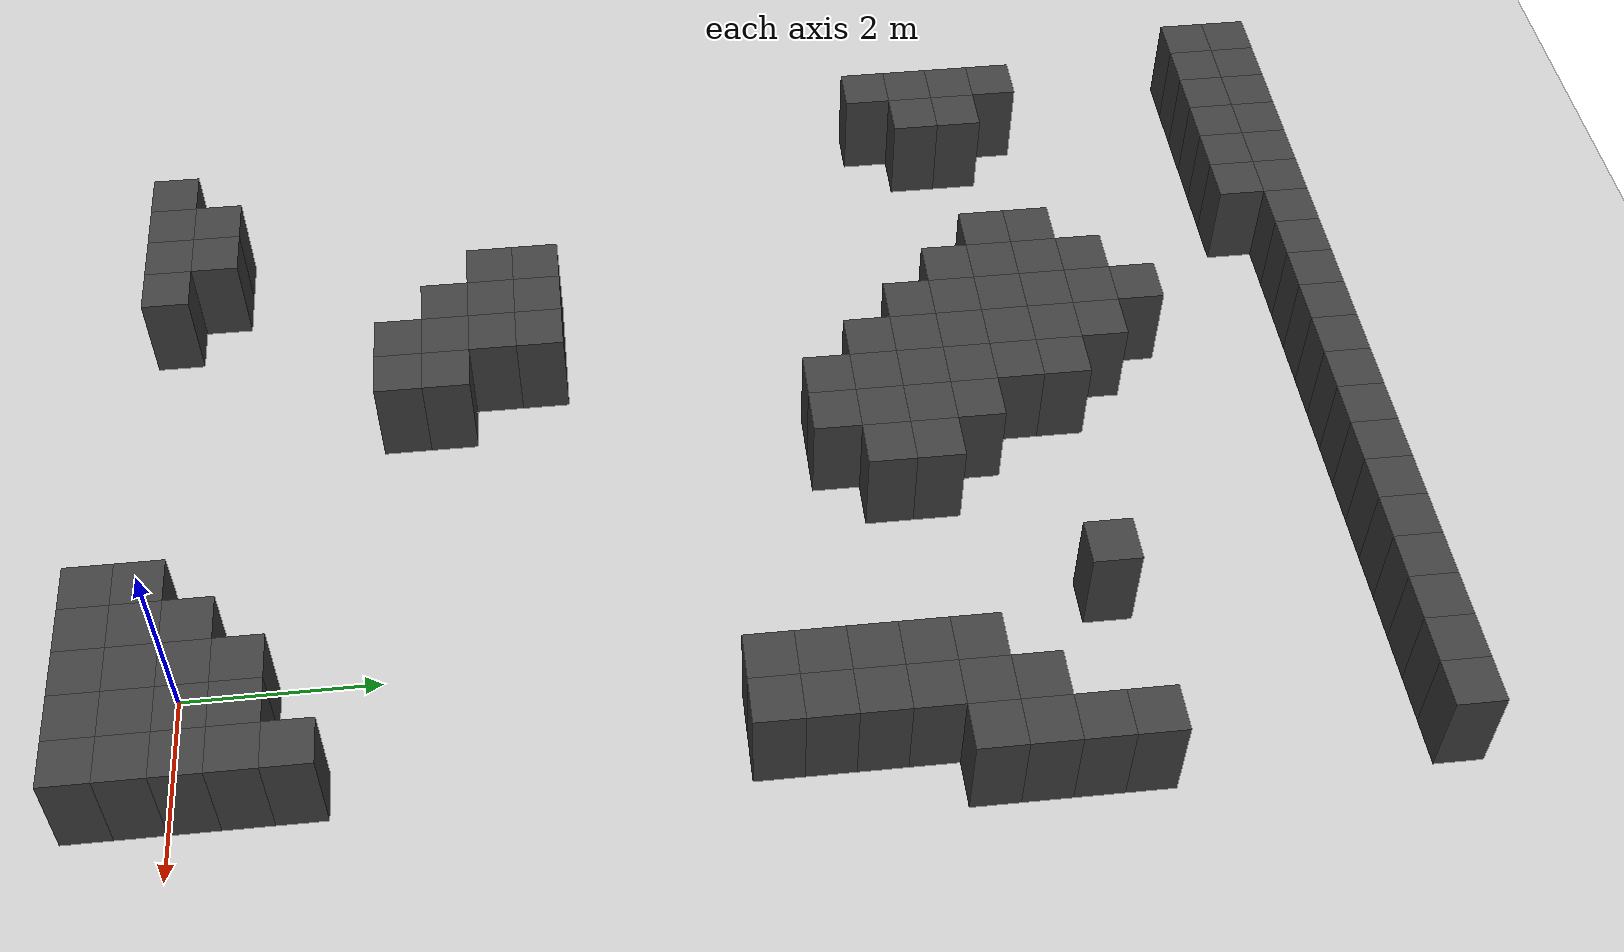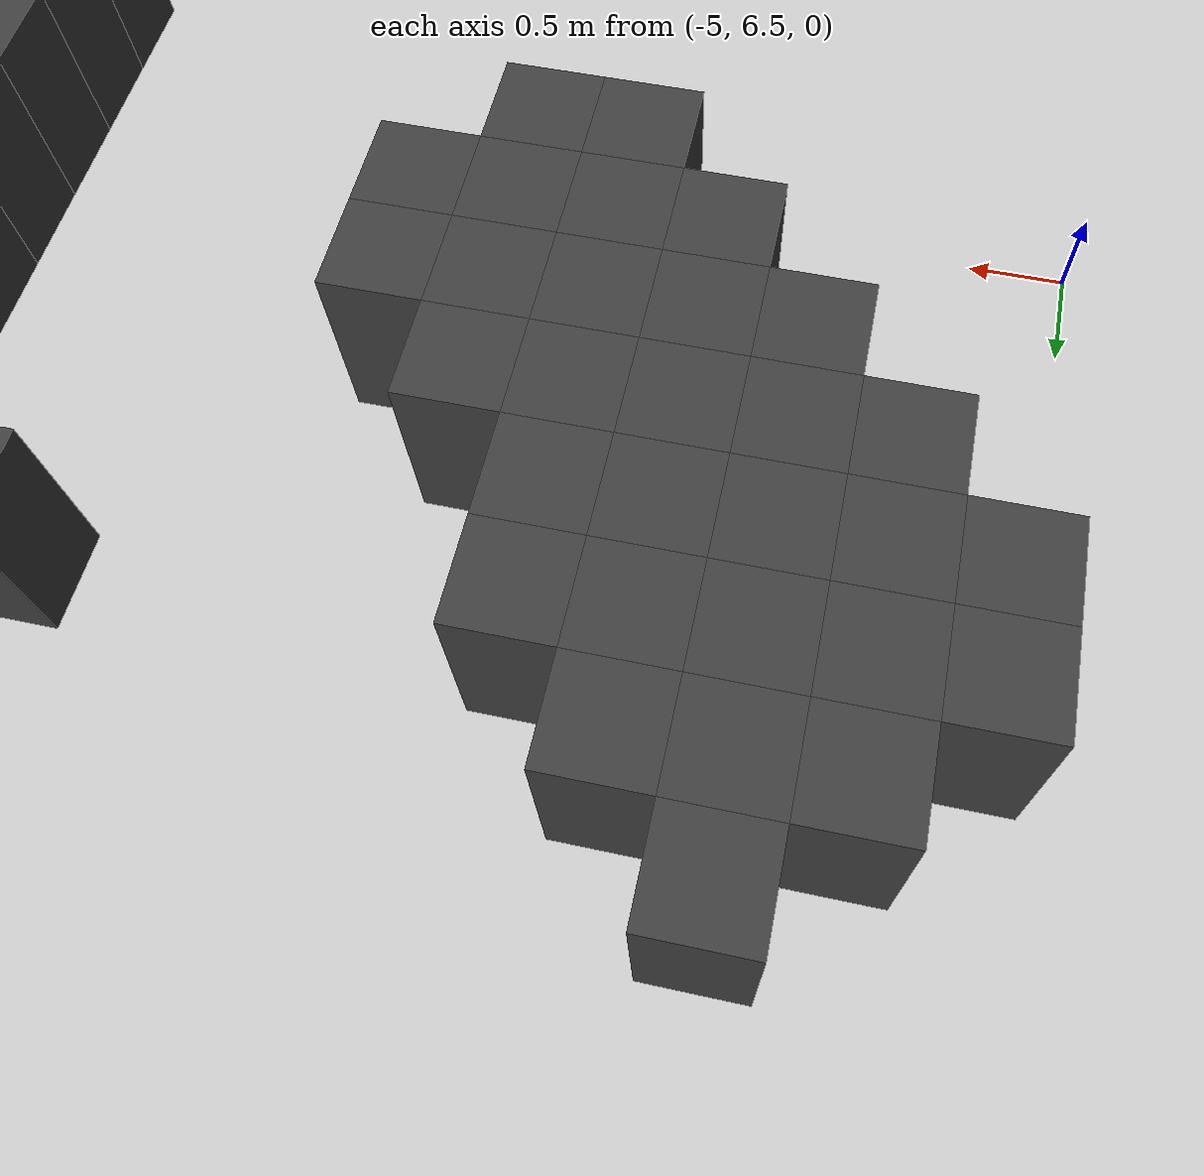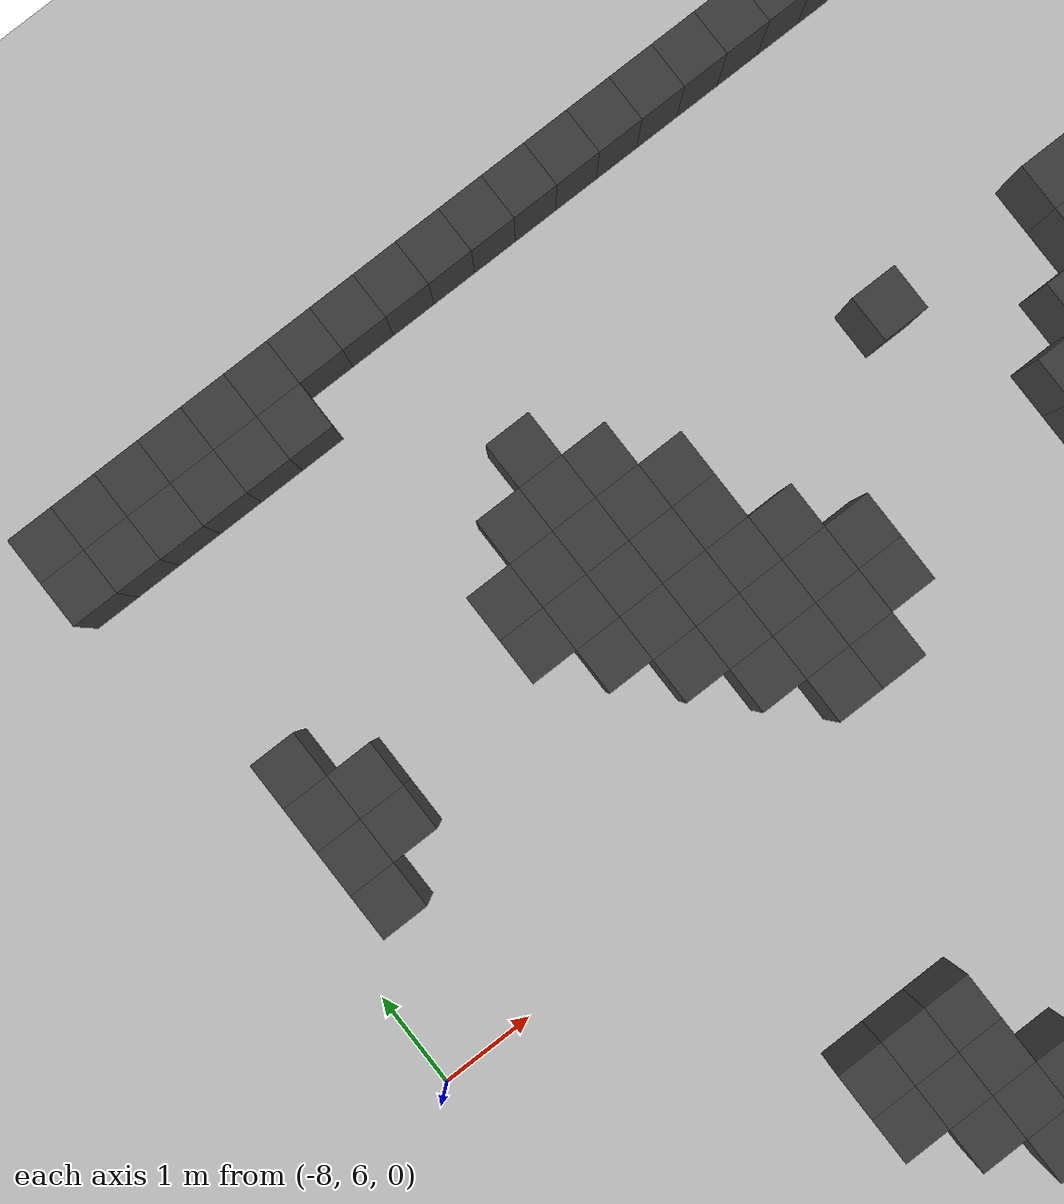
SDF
<sdf version="1.7">
 <world name="map_9405">
  <model name="ground_plane">
   <static>true</static>
   <link name="link">
    <collision name="collision">
     <geometry><plane><normal>0 0 1</normal><size>200 200</size></plane></geometry>
    </collision>
    <visual name="visual">
     <geometry><plane><normal>0 0 1</normal><size>200 200</size></plane></geometry>
     <material><ambient>0.8 0.8 0.8 1</ambient><diffuse>0.8 0.8 0.8 1</diffuse></material>
    </visual>
   </link>
  </model>
  <model name="maze_environment">
   <static>true</static>
   <link name="wall_9">
    <pose>-7.750 12.250 0.500 0 0 0</pose>
    <collision name="col"><geometry><box><size>0.5 0.5 1.0</size></box></geometry></collision>
    <visual name="vis">
     <geometry><box><size>0.5 0.5 1.0</size></box></geometry>
     <material><ambient>0.15 0.15 0.15 1</ambient><diffuse>0.25 0.25 0.25 1</diffuse></material>
    </visual>
   </link>
   <link name="wall_10">
    <pose>-7.250 12.250 0.500 0 0 0</pose>
    <collision name="col"><geometry><box><size>0.5 0.5 1.0</size></box></geometry></collision>
    <visual name="vis">
     <geometry><box><size>0.5 0.5 1.0</size></box></geometry>
     <material><ambient>0.15 0.15 0.15 1</ambient><diffuse>0.25 0.25 0.25 1</diffuse></material>
    </visual>
   </link>
   <link name="wall_11">
    <pose>-6.750 12.250 0.500 0 0 0</pose>
    <collision name="col"><geometry><box><size>0.5 0.5 1.0</size></box></geometry></collision>
    <visual name="vis">
     <geometry><box><size>0.5 0.5 1.0</size></box></geometry>
     <material><ambient>0.15 0.15 0.15 1</ambient><diffuse>0.25 0.25 0.25 1</diffuse></material>
    </visual>
   </link>
   <link name="wall_12">
    <pose>-6.250 12.250 0.500 0 0 0</pose>
    <collision name="col"><geometry><box><size>0.5 0.5 1.0</size></box></geometry></collision>
    <visual name="vis">
     <geometry><box><size>0.5 0.5 1.0</size></box></geometry>
     <material><ambient>0.15 0.15 0.15 1</ambient><diffuse>0.25 0.25 0.25 1</diffuse></material>
    </visual>
   </link>
   <link name="wall_13">
    <pose>-5.750 12.250 0.500 0 0 0</pose>
    <collision name="col"><geometry><box><size>0.5 0.5 1.0</size></box></geometry></collision>
    <visual name="vis">
     <geometry><box><size>0.5 0.5 1.0</size></box></geometry>
     <material><ambient>0.15 0.15 0.15 1</ambient><diffuse>0.25 0.25 0.25 1</diffuse></material>
    </visual>
   </link>
   <link name="wall_14">
    <pose>-5.250 12.250 0.500 0 0 0</pose>
    <collision name="col"><geometry><box><size>0.5 0.5 1.0</size></box></geometry></collision>
    <visual name="vis">
     <geometry><box><size>0.5 0.5 1.0</size></box></geometry>
     <material><ambient>0.15 0.15 0.15 1</ambient><diffuse>0.25 0.25 0.25 1</diffuse></material>
    </visual>
   </link>
   <link name="wall_15">
    <pose>-4.750 12.250 0.500 0 0 0</pose>
    <collision name="col"><geometry><box><size>0.5 0.5 1.0</size></box></geometry></collision>
    <visual name="vis">
     <geometry><box><size>0.5 0.5 1.0</size></box></geometry>
     <material><ambient>0.15 0.15 0.15 1</ambient><diffuse>0.25 0.25 0.25 1</diffuse></material>
    </visual>
   </link>
   <link name="wall_16">
    <pose>-4.250 12.250 0.500 0 0 0</pose>
    <collision name="col"><geometry><box><size>0.5 0.5 1.0</size></box></geometry></collision>
    <visual name="vis">
     <geometry><box><size>0.5 0.5 1.0</size></box></geometry>
     <material><ambient>0.15 0.15 0.15 1</ambient><diffuse>0.25 0.25 0.25 1</diffuse></material>
    </visual>
   </link>
   <link name="wall_17">
    <pose>-3.750 12.250 0.500 0 0 0</pose>
    <collision name="col"><geometry><box><size>0.5 0.5 1.0</size></box></geometry></collision>
    <visual name="vis">
     <geometry><box><size>0.5 0.5 1.0</size></box></geometry>
     <material><ambient>0.15 0.15 0.15 1</ambient><diffuse>0.25 0.25 0.25 1</diffuse></material>
    </visual>
   </link>
   <link name="wall_18">
    <pose>-3.250 12.250 0.500 0 0 0</pose>
    <collision name="col"><geometry><box><size>0.5 0.5 1.0</size></box></geometry></collision>
    <visual name="vis">
     <geometry><box><size>0.5 0.5 1.0</size></box></geometry>
     <material><ambient>0.15 0.15 0.15 1</ambient><diffuse>0.25 0.25 0.25 1</diffuse></material>
    </visual>
   </link>
   <link name="wall_19">
    <pose>-2.750 12.250 0.500 0 0 0</pose>
    <collision name="col"><geometry><box><size>0.5 0.5 1.0</size></box></geometry></collision>
    <visual name="vis">
     <geometry><box><size>0.5 0.5 1.0</size></box></geometry>
     <material><ambient>0.15 0.15 0.15 1</ambient><diffuse>0.25 0.25 0.25 1</diffuse></material>
    </visual>
   </link>
   <link name="wall_20">
    <pose>-2.250 12.250 0.500 0 0 0</pose>
    <collision name="col"><geometry><box><size>0.5 0.5 1.0</size></box></geometry></collision>
    <visual name="vis">
     <geometry><box><size>0.5 0.5 1.0</size></box></geometry>
     <material><ambient>0.15 0.15 0.15 1</ambient><diffuse>0.25 0.25 0.25 1</diffuse></material>
    </visual>
   </link>
   <link name="wall_21">
    <pose>-1.750 12.250 0.500 0 0 0</pose>
    <collision name="col"><geometry><box><size>0.5 0.5 1.0</size></box></geometry></collision>
    <visual name="vis">
     <geometry><box><size>0.5 0.5 1.0</size></box></geometry>
     <material><ambient>0.15 0.15 0.15 1</ambient><diffuse>0.25 0.25 0.25 1</diffuse></material>
    </visual>
   </link>
   <link name="wall_22">
    <pose>-1.250 12.250 0.500 0 0 0</pose>
    <collision name="col"><geometry><box><size>0.5 0.5 1.0</size></box></geometry></collision>
    <visual name="vis">
     <geometry><box><size>0.5 0.5 1.0</size></box></geometry>
     <material><ambient>0.15 0.15 0.15 1</ambient><diffuse>0.25 0.25 0.25 1</diffuse></material>
    </visual>
   </link>
   <link name="wall_23">
    <pose>-0.750 12.250 0.500 0 0 0</pose>
    <collision name="col"><geometry><box><size>0.5 0.5 1.0</size></box></geometry></collision>
    <visual name="vis">
     <geometry><box><size>0.5 0.5 1.0</size></box></geometry>
     <material><ambient>0.15 0.15 0.15 1</ambient><diffuse>0.25 0.25 0.25 1</diffuse></material>
    </visual>
   </link>
   <link name="wall_24">
    <pose>-0.250 12.250 0.500 0 0 0</pose>
    <collision name="col"><geometry><box><size>0.5 0.5 1.0</size></box></geometry></collision>
    <visual name="vis">
     <geometry><box><size>0.5 0.5 1.0</size></box></geometry>
     <material><ambient>0.15 0.15 0.15 1</ambient><diffuse>0.25 0.25 0.25 1</diffuse></material>
    </visual>
   </link>
   <link name="wall_25">
    <pose>0.250 12.250 0.500 0 0 0</pose>
    <collision name="col"><geometry><box><size>0.5 0.5 1.0</size></box></geometry></collision>
    <visual name="vis">
     <geometry><box><size>0.5 0.5 1.0</size></box></geometry>
     <material><ambient>0.15 0.15 0.15 1</ambient><diffuse>0.25 0.25 0.25 1</diffuse></material>
    </visual>
   </link>
   <link name="wall_26">
    <pose>0.750 12.250 0.500 0 0 0</pose>
    <collision name="col"><geometry><box><size>0.5 0.5 1.0</size></box></geometry></collision>
    <visual name="vis">
     <geometry><box><size>0.5 0.5 1.0</size></box></geometry>
     <material><ambient>0.15 0.15 0.15 1</ambient><diffuse>0.25 0.25 0.25 1</diffuse></material>
    </visual>
   </link>
   <link name="wall_27">
    <pose>1.250 12.250 0.500 0 0 0</pose>
    <collision name="col"><geometry><box><size>0.5 0.5 1.0</size></box></geometry></collision>
    <visual name="vis">
     <geometry><box><size>0.5 0.5 1.0</size></box></geometry>
     <material><ambient>0.15 0.15 0.15 1</ambient><diffuse>0.25 0.25 0.25 1</diffuse></material>
    </visual>
   </link>
   <link name="wall_28">
    <pose>1.750 12.250 0.500 0 0 0</pose>
    <collision name="col"><geometry><box><size>0.5 0.5 1.0</size></box></geometry></collision>
    <visual name="vis">
     <geometry><box><size>0.5 0.5 1.0</size></box></geometry>
     <material><ambient>0.15 0.15 0.15 1</ambient><diffuse>0.25 0.25 0.25 1</diffuse></material>
    </visual>
   </link>
   <link name="wall_54">
    <pose>-7.750 11.750 0.500 0 0 0</pose>
    <collision name="col"><geometry><box><size>0.5 0.5 1.0</size></box></geometry></collision>
    <visual name="vis">
     <geometry><box><size>0.5 0.5 1.0</size></box></geometry>
     <material><ambient>0.15 0.15 0.15 1</ambient><diffuse>0.25 0.25 0.25 1</diffuse></material>
    </visual>
   </link>
   <link name="wall_55">
    <pose>-7.250 11.750 0.500 0 0 0</pose>
    <collision name="col"><geometry><box><size>0.5 0.5 1.0</size></box></geometry></collision>
    <visual name="vis">
     <geometry><box><size>0.5 0.5 1.0</size></box></geometry>
     <material><ambient>0.15 0.15 0.15 1</ambient><diffuse>0.25 0.25 0.25 1</diffuse></material>
    </visual>
   </link>
   <link name="wall_56">
    <pose>-6.750 11.750 0.500 0 0 0</pose>
    <collision name="col"><geometry><box><size>0.5 0.5 1.0</size></box></geometry></collision>
    <visual name="vis">
     <geometry><box><size>0.5 0.5 1.0</size></box></geometry>
     <material><ambient>0.15 0.15 0.15 1</ambient><diffuse>0.25 0.25 0.25 1</diffuse></material>
    </visual>
   </link>
   <link name="wall_57">
    <pose>-6.250 11.750 0.500 0 0 0</pose>
    <collision name="col"><geometry><box><size>0.5 0.5 1.0</size></box></geometry></collision>
    <visual name="vis">
     <geometry><box><size>0.5 0.5 1.0</size></box></geometry>
     <material><ambient>0.15 0.15 0.15 1</ambient><diffuse>0.25 0.25 0.25 1</diffuse></material>
    </visual>
   </link>
   <link name="wall_58">
    <pose>-5.750 11.750 0.500 0 0 0</pose>
    <collision name="col"><geometry><box><size>0.5 0.5 1.0</size></box></geometry></collision>
    <visual name="vis">
     <geometry><box><size>0.5 0.5 1.0</size></box></geometry>
     <material><ambient>0.15 0.15 0.15 1</ambient><diffuse>0.25 0.25 0.25 1</diffuse></material>
    </visual>
   </link>
   <link name="wall_59">
    <pose>-5.250 11.750 0.500 0 0 0</pose>
    <collision name="col"><geometry><box><size>0.5 0.5 1.0</size></box></geometry></collision>
    <visual name="vis">
     <geometry><box><size>0.5 0.5 1.0</size></box></geometry>
     <material><ambient>0.15 0.15 0.15 1</ambient><diffuse>0.25 0.25 0.25 1</diffuse></material>
    </visual>
   </link>
   <link name="wall_103">
    <pose>-3.750 10.250 0.500 0 0 0</pose>
    <collision name="col"><geometry><box><size>0.5 0.5 1.0</size></box></geometry></collision>
    <visual name="vis">
     <geometry><box><size>0.5 0.5 1.0</size></box></geometry>
     <material><ambient>0.15 0.15 0.15 1</ambient><diffuse>0.25 0.25 0.25 1</diffuse></material>
    </visual>
   </link>
   <link name="wall_113">
    <pose>-4.250 9.750 0.500 0 0 0</pose>
    <collision name="col"><geometry><box><size>0.5 0.5 1.0</size></box></geometry></collision>
    <visual name="vis">
     <geometry><box><size>0.5 0.5 1.0</size></box></geometry>
     <material><ambient>0.15 0.15 0.15 1</ambient><diffuse>0.25 0.25 0.25 1</diffuse></material>
    </visual>
   </link>
   <link name="wall_114">
    <pose>-3.750 9.750 0.500 0 0 0</pose>
    <collision name="col"><geometry><box><size>0.5 0.5 1.0</size></box></geometry></collision>
    <visual name="vis">
     <geometry><box><size>0.5 0.5 1.0</size></box></geometry>
     <material><ambient>0.15 0.15 0.15 1</ambient><diffuse>0.25 0.25 0.25 1</diffuse></material>
    </visual>
   </link>
   <link name="wall_115">
    <pose>-3.250 9.750 0.500 0 0 0</pose>
    <collision name="col"><geometry><box><size>0.5 0.5 1.0</size></box></geometry></collision>
    <visual name="vis">
     <geometry><box><size>0.5 0.5 1.0</size></box></geometry>
     <material><ambient>0.15 0.15 0.15 1</ambient><diffuse>0.25 0.25 0.25 1</diffuse></material>
    </visual>
   </link>
   <link name="wall_124">
    <pose>-7.250 9.250 0.500 0 0 0</pose>
    <collision name="col"><geometry><box><size>0.5 0.5 1.0</size></box></geometry></collision>
    <visual name="vis">
     <geometry><box><size>0.5 0.5 1.0</size></box></geometry>
     <material><ambient>0.15 0.15 0.15 1</ambient><diffuse>0.25 0.25 0.25 1</diffuse></material>
    </visual>
   </link>
   <link name="wall_125">
    <pose>-4.750 9.250 0.500 0 0 0</pose>
    <collision name="col"><geometry><box><size>0.5 0.5 1.0</size></box></geometry></collision>
    <visual name="vis">
     <geometry><box><size>0.5 0.5 1.0</size></box></geometry>
     <material><ambient>0.15 0.15 0.15 1</ambient><diffuse>0.25 0.25 0.25 1</diffuse></material>
    </visual>
   </link>
   <link name="wall_126">
    <pose>-4.250 9.250 0.500 0 0 0</pose>
    <collision name="col"><geometry><box><size>0.5 0.5 1.0</size></box></geometry></collision>
    <visual name="vis">
     <geometry><box><size>0.5 0.5 1.0</size></box></geometry>
     <material><ambient>0.15 0.15 0.15 1</ambient><diffuse>0.25 0.25 0.25 1</diffuse></material>
    </visual>
   </link>
   <link name="wall_127">
    <pose>-3.750 9.250 0.500 0 0 0</pose>
    <collision name="col"><geometry><box><size>0.5 0.5 1.0</size></box></geometry></collision>
    <visual name="vis">
     <geometry><box><size>0.5 0.5 1.0</size></box></geometry>
     <material><ambient>0.15 0.15 0.15 1</ambient><diffuse>0.25 0.25 0.25 1</diffuse></material>
    </visual>
   </link>
   <link name="wall_128">
    <pose>-3.250 9.250 0.500 0 0 0</pose>
    <collision name="col"><geometry><box><size>0.5 0.5 1.0</size></box></geometry></collision>
    <visual name="vis">
     <geometry><box><size>0.5 0.5 1.0</size></box></geometry>
     <material><ambient>0.15 0.15 0.15 1</ambient><diffuse>0.25 0.25 0.25 1</diffuse></material>
    </visual>
   </link>
   <link name="wall_129">
    <pose>-2.750 9.250 0.500 0 0 0</pose>
    <collision name="col"><geometry><box><size>0.5 0.5 1.0</size></box></geometry></collision>
    <visual name="vis">
     <geometry><box><size>0.5 0.5 1.0</size></box></geometry>
     <material><ambient>0.15 0.15 0.15 1</ambient><diffuse>0.25 0.25 0.25 1</diffuse></material>
    </visual>
   </link>
   <link name="wall_130">
    <pose>-0.250 9.250 0.500 0 0 0</pose>
    <collision name="col"><geometry><box><size>0.5 0.5 1.0</size></box></geometry></collision>
    <visual name="vis">
     <geometry><box><size>0.5 0.5 1.0</size></box></geometry>
     <material><ambient>0.15 0.15 0.15 1</ambient><diffuse>0.25 0.25 0.25 1</diffuse></material>
    </visual>
   </link>
   <link name="wall_131">
    <pose>1.750 9.250 0.500 0 0 0</pose>
    <collision name="col"><geometry><box><size>0.5 0.5 1.0</size></box></geometry></collision>
    <visual name="vis">
     <geometry><box><size>0.5 0.5 1.0</size></box></geometry>
     <material><ambient>0.15 0.15 0.15 1</ambient><diffuse>0.25 0.25 0.25 1</diffuse></material>
    </visual>
   </link>
   <link name="wall_140">
    <pose>-7.250 8.750 0.500 0 0 0</pose>
    <collision name="col"><geometry><box><size>0.5 0.5 1.0</size></box></geometry></collision>
    <visual name="vis">
     <geometry><box><size>0.5 0.5 1.0</size></box></geometry>
     <material><ambient>0.15 0.15 0.15 1</ambient><diffuse>0.25 0.25 0.25 1</diffuse></material>
    </visual>
   </link>
   <link name="wall_141">
    <pose>-6.750 8.750 0.500 0 0 0</pose>
    <collision name="col"><geometry><box><size>0.5 0.5 1.0</size></box></geometry></collision>
    <visual name="vis">
     <geometry><box><size>0.5 0.5 1.0</size></box></geometry>
     <material><ambient>0.15 0.15 0.15 1</ambient><diffuse>0.25 0.25 0.25 1</diffuse></material>
    </visual>
   </link>
   <link name="wall_142">
    <pose>-4.750 8.750 0.500 0 0 0</pose>
    <collision name="col"><geometry><box><size>0.5 0.5 1.0</size></box></geometry></collision>
    <visual name="vis">
     <geometry><box><size>0.5 0.5 1.0</size></box></geometry>
     <material><ambient>0.15 0.15 0.15 1</ambient><diffuse>0.25 0.25 0.25 1</diffuse></material>
    </visual>
   </link>
   <link name="wall_143">
    <pose>-4.250 8.750 0.500 0 0 0</pose>
    <collision name="col"><geometry><box><size>0.5 0.5 1.0</size></box></geometry></collision>
    <visual name="vis">
     <geometry><box><size>0.5 0.5 1.0</size></box></geometry>
     <material><ambient>0.15 0.15 0.15 1</ambient><diffuse>0.25 0.25 0.25 1</diffuse></material>
    </visual>
   </link>
   <link name="wall_144">
    <pose>-3.750 8.750 0.500 0 0 0</pose>
    <collision name="col"><geometry><box><size>0.5 0.5 1.0</size></box></geometry></collision>
    <visual name="vis">
     <geometry><box><size>0.5 0.5 1.0</size></box></geometry>
     <material><ambient>0.15 0.15 0.15 1</ambient><diffuse>0.25 0.25 0.25 1</diffuse></material>
    </visual>
   </link>
   <link name="wall_145">
    <pose>-3.250 8.750 0.500 0 0 0</pose>
    <collision name="col"><geometry><box><size>0.5 0.5 1.0</size></box></geometry></collision>
    <visual name="vis">
     <geometry><box><size>0.5 0.5 1.0</size></box></geometry>
     <material><ambient>0.15 0.15 0.15 1</ambient><diffuse>0.25 0.25 0.25 1</diffuse></material>
    </visual>
   </link>
   <link name="wall_146">
    <pose>-2.750 8.750 0.500 0 0 0</pose>
    <collision name="col"><geometry><box><size>0.5 0.5 1.0</size></box></geometry></collision>
    <visual name="vis">
     <geometry><box><size>0.5 0.5 1.0</size></box></geometry>
     <material><ambient>0.15 0.15 0.15 1</ambient><diffuse>0.25 0.25 0.25 1</diffuse></material>
    </visual>
   </link>
   <link name="wall_147">
    <pose>1.750 8.750 0.500 0 0 0</pose>
    <collision name="col"><geometry><box><size>0.5 0.5 1.0</size></box></geometry></collision>
    <visual name="vis">
     <geometry><box><size>0.5 0.5 1.0</size></box></geometry>
     <material><ambient>0.15 0.15 0.15 1</ambient><diffuse>0.25 0.25 0.25 1</diffuse></material>
    </visual>
   </link>
   <link name="wall_155">
    <pose>-7.250 8.250 0.500 0 0 0</pose>
    <collision name="col"><geometry><box><size>0.5 0.5 1.0</size></box></geometry></collision>
    <visual name="vis">
     <geometry><box><size>0.5 0.5 1.0</size></box></geometry>
     <material><ambient>0.15 0.15 0.15 1</ambient><diffuse>0.25 0.25 0.25 1</diffuse></material>
    </visual>
   </link>
   <link name="wall_156">
    <pose>-6.750 8.250 0.500 0 0 0</pose>
    <collision name="col"><geometry><box><size>0.5 0.5 1.0</size></box></geometry></collision>
    <visual name="vis">
     <geometry><box><size>0.5 0.5 1.0</size></box></geometry>
     <material><ambient>0.15 0.15 0.15 1</ambient><diffuse>0.25 0.25 0.25 1</diffuse></material>
    </visual>
   </link>
   <link name="wall_157">
    <pose>-4.250 8.250 0.500 0 0 0</pose>
    <collision name="col"><geometry><box><size>0.5 0.5 1.0</size></box></geometry></collision>
    <visual name="vis">
     <geometry><box><size>0.5 0.5 1.0</size></box></geometry>
     <material><ambient>0.15 0.15 0.15 1</ambient><diffuse>0.25 0.25 0.25 1</diffuse></material>
    </visual>
   </link>
   <link name="wall_158">
    <pose>-3.750 8.250 0.500 0 0 0</pose>
    <collision name="col"><geometry><box><size>0.5 0.5 1.0</size></box></geometry></collision>
    <visual name="vis">
     <geometry><box><size>0.5 0.5 1.0</size></box></geometry>
     <material><ambient>0.15 0.15 0.15 1</ambient><diffuse>0.25 0.25 0.25 1</diffuse></material>
    </visual>
   </link>
   <link name="wall_159">
    <pose>-3.250 8.250 0.500 0 0 0</pose>
    <collision name="col"><geometry><box><size>0.5 0.5 1.0</size></box></geometry></collision>
    <visual name="vis">
     <geometry><box><size>0.5 0.5 1.0</size></box></geometry>
     <material><ambient>0.15 0.15 0.15 1</ambient><diffuse>0.25 0.25 0.25 1</diffuse></material>
    </visual>
   </link>
   <link name="wall_160">
    <pose>-2.750 8.250 0.500 0 0 0</pose>
    <collision name="col"><geometry><box><size>0.5 0.5 1.0</size></box></geometry></collision>
    <visual name="vis">
     <geometry><box><size>0.5 0.5 1.0</size></box></geometry>
     <material><ambient>0.15 0.15 0.15 1</ambient><diffuse>0.25 0.25 0.25 1</diffuse></material>
    </visual>
   </link>
   <link name="wall_161">
    <pose>-2.250 8.250 0.500 0 0 0</pose>
    <collision name="col"><geometry><box><size>0.5 0.5 1.0</size></box></geometry></collision>
    <visual name="vis">
     <geometry><box><size>0.5 0.5 1.0</size></box></geometry>
     <material><ambient>0.15 0.15 0.15 1</ambient><diffuse>0.25 0.25 0.25 1</diffuse></material>
    </visual>
   </link>
   <link name="wall_162">
    <pose>1.250 8.250 0.500 0 0 0</pose>
    <collision name="col"><geometry><box><size>0.5 0.5 1.0</size></box></geometry></collision>
    <visual name="vis">
     <geometry><box><size>0.5 0.5 1.0</size></box></geometry>
     <material><ambient>0.15 0.15 0.15 1</ambient><diffuse>0.25 0.25 0.25 1</diffuse></material>
    </visual>
   </link>
   <link name="wall_163">
    <pose>1.750 8.250 0.500 0 0 0</pose>
    <collision name="col"><geometry><box><size>0.5 0.5 1.0</size></box></geometry></collision>
    <visual name="vis">
     <geometry><box><size>0.5 0.5 1.0</size></box></geometry>
     <material><ambient>0.15 0.15 0.15 1</ambient><diffuse>0.25 0.25 0.25 1</diffuse></material>
    </visual>
   </link>
   <link name="wall_170">
    <pose>-7.250 7.750 0.500 0 0 0</pose>
    <collision name="col"><geometry><box><size>0.5 0.5 1.0</size></box></geometry></collision>
    <visual name="vis">
     <geometry><box><size>0.5 0.5 1.0</size></box></geometry>
     <material><ambient>0.15 0.15 0.15 1</ambient><diffuse>0.25 0.25 0.25 1</diffuse></material>
    </visual>
   </link>
   <link name="wall_171">
    <pose>-3.750 7.750 0.500 0 0 0</pose>
    <collision name="col"><geometry><box><size>0.5 0.5 1.0</size></box></geometry></collision>
    <visual name="vis">
     <geometry><box><size>0.5 0.5 1.0</size></box></geometry>
     <material><ambient>0.15 0.15 0.15 1</ambient><diffuse>0.25 0.25 0.25 1</diffuse></material>
    </visual>
   </link>
   <link name="wall_172">
    <pose>-3.250 7.750 0.500 0 0 0</pose>
    <collision name="col"><geometry><box><size>0.5 0.5 1.0</size></box></geometry></collision>
    <visual name="vis">
     <geometry><box><size>0.5 0.5 1.0</size></box></geometry>
     <material><ambient>0.15 0.15 0.15 1</ambient><diffuse>0.25 0.25 0.25 1</diffuse></material>
    </visual>
   </link>
   <link name="wall_173">
    <pose>-2.750 7.750 0.500 0 0 0</pose>
    <collision name="col"><geometry><box><size>0.5 0.5 1.0</size></box></geometry></collision>
    <visual name="vis">
     <geometry><box><size>0.5 0.5 1.0</size></box></geometry>
     <material><ambient>0.15 0.15 0.15 1</ambient><diffuse>0.25 0.25 0.25 1</diffuse></material>
    </visual>
   </link>
   <link name="wall_174">
    <pose>-2.250 7.750 0.500 0 0 0</pose>
    <collision name="col"><geometry><box><size>0.5 0.5 1.0</size></box></geometry></collision>
    <visual name="vis">
     <geometry><box><size>0.5 0.5 1.0</size></box></geometry>
     <material><ambient>0.15 0.15 0.15 1</ambient><diffuse>0.25 0.25 0.25 1</diffuse></material>
    </visual>
   </link>
   <link name="wall_175">
    <pose>-1.750 7.750 0.500 0 0 0</pose>
    <collision name="col"><geometry><box><size>0.5 0.5 1.0</size></box></geometry></collision>
    <visual name="vis">
     <geometry><box><size>0.5 0.5 1.0</size></box></geometry>
     <material><ambient>0.15 0.15 0.15 1</ambient><diffuse>0.25 0.25 0.25 1</diffuse></material>
    </visual>
   </link>
   <link name="wall_176">
    <pose>0.750 7.750 0.500 0 0 0</pose>
    <collision name="col"><geometry><box><size>0.5 0.5 1.0</size></box></geometry></collision>
    <visual name="vis">
     <geometry><box><size>0.5 0.5 1.0</size></box></geometry>
     <material><ambient>0.15 0.15 0.15 1</ambient><diffuse>0.25 0.25 0.25 1</diffuse></material>
    </visual>
   </link>
   <link name="wall_177">
    <pose>1.250 7.750 0.500 0 0 0</pose>
    <collision name="col"><geometry><box><size>0.5 0.5 1.0</size></box></geometry></collision>
    <visual name="vis">
     <geometry><box><size>0.5 0.5 1.0</size></box></geometry>
     <material><ambient>0.15 0.15 0.15 1</ambient><diffuse>0.25 0.25 0.25 1</diffuse></material>
    </visual>
   </link>
   <link name="wall_178">
    <pose>1.750 7.750 0.500 0 0 0</pose>
    <collision name="col"><geometry><box><size>0.5 0.5 1.0</size></box></geometry></collision>
    <visual name="vis">
     <geometry><box><size>0.5 0.5 1.0</size></box></geometry>
     <material><ambient>0.15 0.15 0.15 1</ambient><diffuse>0.25 0.25 0.25 1</diffuse></material>
    </visual>
   </link>
   <link name="wall_183">
    <pose>-3.250 7.250 0.500 0 0 0</pose>
    <collision name="col"><geometry><box><size>0.5 0.5 1.0</size></box></geometry></collision>
    <visual name="vis">
     <geometry><box><size>0.5 0.5 1.0</size></box></geometry>
     <material><ambient>0.15 0.15 0.15 1</ambient><diffuse>0.25 0.25 0.25 1</diffuse></material>
    </visual>
   </link>
   <link name="wall_184">
    <pose>-2.750 7.250 0.500 0 0 0</pose>
    <collision name="col"><geometry><box><size>0.5 0.5 1.0</size></box></geometry></collision>
    <visual name="vis">
     <geometry><box><size>0.5 0.5 1.0</size></box></geometry>
     <material><ambient>0.15 0.15 0.15 1</ambient><diffuse>0.25 0.25 0.25 1</diffuse></material>
    </visual>
   </link>
   <link name="wall_185">
    <pose>-2.250 7.250 0.500 0 0 0</pose>
    <collision name="col"><geometry><box><size>0.5 0.5 1.0</size></box></geometry></collision>
    <visual name="vis">
     <geometry><box><size>0.5 0.5 1.0</size></box></geometry>
     <material><ambient>0.15 0.15 0.15 1</ambient><diffuse>0.25 0.25 0.25 1</diffuse></material>
    </visual>
   </link>
   <link name="wall_186">
    <pose>-1.750 7.250 0.500 0 0 0</pose>
    <collision name="col"><geometry><box><size>0.5 0.5 1.0</size></box></geometry></collision>
    <visual name="vis">
     <geometry><box><size>0.5 0.5 1.0</size></box></geometry>
     <material><ambient>0.15 0.15 0.15 1</ambient><diffuse>0.25 0.25 0.25 1</diffuse></material>
    </visual>
   </link>
   <link name="wall_187">
    <pose>0.750 7.250 0.500 0 0 0</pose>
    <collision name="col"><geometry><box><size>0.5 0.5 1.0</size></box></geometry></collision>
    <visual name="vis">
     <geometry><box><size>0.5 0.5 1.0</size></box></geometry>
     <material><ambient>0.15 0.15 0.15 1</ambient><diffuse>0.25 0.25 0.25 1</diffuse></material>
    </visual>
   </link>
   <link name="wall_188">
    <pose>1.250 7.250 0.500 0 0 0</pose>
    <collision name="col"><geometry><box><size>0.5 0.5 1.0</size></box></geometry></collision>
    <visual name="vis">
     <geometry><box><size>0.5 0.5 1.0</size></box></geometry>
     <material><ambient>0.15 0.15 0.15 1</ambient><diffuse>0.25 0.25 0.25 1</diffuse></material>
    </visual>
   </link>
   <link name="wall_193">
    <pose>-2.750 6.750 0.500 0 0 0</pose>
    <collision name="col"><geometry><box><size>0.5 0.5 1.0</size></box></geometry></collision>
    <visual name="vis">
     <geometry><box><size>0.5 0.5 1.0</size></box></geometry>
     <material><ambient>0.15 0.15 0.15 1</ambient><diffuse>0.25 0.25 0.25 1</diffuse></material>
    </visual>
   </link>
   <link name="wall_194">
    <pose>-2.250 6.750 0.500 0 0 0</pose>
    <collision name="col"><geometry><box><size>0.5 0.5 1.0</size></box></geometry></collision>
    <visual name="vis">
     <geometry><box><size>0.5 0.5 1.0</size></box></geometry>
     <material><ambient>0.15 0.15 0.15 1</ambient><diffuse>0.25 0.25 0.25 1</diffuse></material>
    </visual>
   </link>
   <link name="wall_195">
    <pose>0.750 6.750 0.500 0 0 0</pose>
    <collision name="col"><geometry><box><size>0.5 0.5 1.0</size></box></geometry></collision>
    <visual name="vis">
     <geometry><box><size>0.5 0.5 1.0</size></box></geometry>
     <material><ambient>0.15 0.15 0.15 1</ambient><diffuse>0.25 0.25 0.25 1</diffuse></material>
    </visual>
   </link>
   <link name="wall_196">
    <pose>1.250 6.750 0.500 0 0 0</pose>
    <collision name="col"><geometry><box><size>0.5 0.5 1.0</size></box></geometry></collision>
    <visual name="vis">
     <geometry><box><size>0.5 0.5 1.0</size></box></geometry>
     <material><ambient>0.15 0.15 0.15 1</ambient><diffuse>0.25 0.25 0.25 1</diffuse></material>
    </visual>
   </link>
   <link name="wall_200">
    <pose>0.750 6.250 0.500 0 0 0</pose>
    <collision name="col"><geometry><box><size>0.5 0.5 1.0</size></box></geometry></collision>
    <visual name="vis">
     <geometry><box><size>0.5 0.5 1.0</size></box></geometry>
     <material><ambient>0.15 0.15 0.15 1</ambient><diffuse>0.25 0.25 0.25 1</diffuse></material>
    </visual>
   </link>
   <link name="wall_201">
    <pose>1.250 6.250 0.500 0 0 0</pose>
    <collision name="col"><geometry><box><size>0.5 0.5 1.0</size></box></geometry></collision>
    <visual name="vis">
     <geometry><box><size>0.5 0.5 1.0</size></box></geometry>
     <material><ambient>0.15 0.15 0.15 1</ambient><diffuse>0.25 0.25 0.25 1</diffuse></material>
    </visual>
   </link>
   <link name="wall_205">
    <pose>0.750 5.750 0.500 0 0 0</pose>
    <collision name="col"><geometry><box><size>0.5 0.5 1.0</size></box></geometry></collision>
    <visual name="vis">
     <geometry><box><size>0.5 0.5 1.0</size></box></geometry>
     <material><ambient>0.15 0.15 0.15 1</ambient><diffuse>0.25 0.25 0.25 1</diffuse></material>
    </visual>
   </link>
   <link name="wall_206">
    <pose>1.250 5.750 0.500 0 0 0</pose>
    <collision name="col"><geometry><box><size>0.5 0.5 1.0</size></box></geometry></collision>
    <visual name="vis">
     <geometry><box><size>0.5 0.5 1.0</size></box></geometry>
     <material><ambient>0.15 0.15 0.15 1</ambient><diffuse>0.25 0.25 0.25 1</diffuse></material>
    </visual>
   </link>
   <link name="wall_262">
    <pose>-4.750 3.750 0.500 0 0 0</pose>
    <collision name="col"><geometry><box><size>0.5 0.5 1.0</size></box></geometry></collision>
    <visual name="vis">
     <geometry><box><size>0.5 0.5 1.0</size></box></geometry>
     <material><ambient>0.15 0.15 0.15 1</ambient><diffuse>0.25 0.25 0.25 1</diffuse></material>
    </visual>
   </link>
   <link name="wall_263">
    <pose>-4.250 3.750 0.500 0 0 0</pose>
    <collision name="col"><geometry><box><size>0.5 0.5 1.0</size></box></geometry></collision>
    <visual name="vis">
     <geometry><box><size>0.5 0.5 1.0</size></box></geometry>
     <material><ambient>0.15 0.15 0.15 1</ambient><diffuse>0.25 0.25 0.25 1</diffuse></material>
    </visual>
   </link>
   <link name="wall_264">
    <pose>-3.750 3.750 0.500 0 0 0</pose>
    <collision name="col"><geometry><box><size>0.5 0.5 1.0</size></box></geometry></collision>
    <visual name="vis">
     <geometry><box><size>0.5 0.5 1.0</size></box></geometry>
     <material><ambient>0.15 0.15 0.15 1</ambient><diffuse>0.25 0.25 0.25 1</diffuse></material>
    </visual>
   </link>
   <link name="wall_288">
    <pose>-4.750 3.250 0.500 0 0 0</pose>
    <collision name="col"><geometry><box><size>0.5 0.5 1.0</size></box></geometry></collision>
    <visual name="vis">
     <geometry><box><size>0.5 0.5 1.0</size></box></geometry>
     <material><ambient>0.15 0.15 0.15 1</ambient><diffuse>0.25 0.25 0.25 1</diffuse></material>
    </visual>
   </link>
   <link name="wall_289">
    <pose>-4.250 3.250 0.500 0 0 0</pose>
    <collision name="col"><geometry><box><size>0.5 0.5 1.0</size></box></geometry></collision>
    <visual name="vis">
     <geometry><box><size>0.5 0.5 1.0</size></box></geometry>
     <material><ambient>0.15 0.15 0.15 1</ambient><diffuse>0.25 0.25 0.25 1</diffuse></material>
    </visual>
   </link>
   <link name="wall_290">
    <pose>-3.750 3.250 0.500 0 0 0</pose>
    <collision name="col"><geometry><box><size>0.5 0.5 1.0</size></box></geometry></collision>
    <visual name="vis">
     <geometry><box><size>0.5 0.5 1.0</size></box></geometry>
     <material><ambient>0.15 0.15 0.15 1</ambient><diffuse>0.25 0.25 0.25 1</diffuse></material>
    </visual>
   </link>
   <link name="wall_311">
    <pose>-4.250 2.750 0.500 0 0 0</pose>
    <collision name="col"><geometry><box><size>0.5 0.5 1.0</size></box></geometry></collision>
    <visual name="vis">
     <geometry><box><size>0.5 0.5 1.0</size></box></geometry>
     <material><ambient>0.15 0.15 0.15 1</ambient><diffuse>0.25 0.25 0.25 1</diffuse></material>
    </visual>
   </link>
   <link name="wall_312">
    <pose>-3.750 2.750 0.500 0 0 0</pose>
    <collision name="col"><geometry><box><size>0.5 0.5 1.0</size></box></geometry></collision>
    <visual name="vis">
     <geometry><box><size>0.5 0.5 1.0</size></box></geometry>
     <material><ambient>0.15 0.15 0.15 1</ambient><diffuse>0.25 0.25 0.25 1</diffuse></material>
    </visual>
   </link>
   <link name="wall_313">
    <pose>-3.250 2.750 0.500 0 0 0</pose>
    <collision name="col"><geometry><box><size>0.5 0.5 1.0</size></box></geometry></collision>
    <visual name="vis">
     <geometry><box><size>0.5 0.5 1.0</size></box></geometry>
     <material><ambient>0.15 0.15 0.15 1</ambient><diffuse>0.25 0.25 0.25 1</diffuse></material>
    </visual>
   </link>
   <link name="wall_333">
    <pose>-3.750 2.250 0.500 0 0 0</pose>
    <collision name="col"><geometry><box><size>0.5 0.5 1.0</size></box></geometry></collision>
    <visual name="vis">
     <geometry><box><size>0.5 0.5 1.0</size></box></geometry>
     <material><ambient>0.15 0.15 0.15 1</ambient><diffuse>0.25 0.25 0.25 1</diffuse></material>
    </visual>
   </link>
   <link name="wall_334">
    <pose>-3.250 2.250 0.500 0 0 0</pose>
    <collision name="col"><geometry><box><size>0.5 0.5 1.0</size></box></geometry></collision>
    <visual name="vis">
     <geometry><box><size>0.5 0.5 1.0</size></box></geometry>
     <material><ambient>0.15 0.15 0.15 1</ambient><diffuse>0.25 0.25 0.25 1</diffuse></material>
    </visual>
   </link>
   <link name="wall_374">
    <pose>1.250 1.250 0.500 0 0 0</pose>
    <collision name="col"><geometry><box><size>0.5 0.5 1.0</size></box></geometry></collision>
    <visual name="vis">
     <geometry><box><size>0.5 0.5 1.0</size></box></geometry>
     <material><ambient>0.15 0.15 0.15 1</ambient><diffuse>0.25 0.25 0.25 1</diffuse></material>
    </visual>
   </link>
   <link name="wall_393">
    <pose>0.250 0.750 0.500 0 0 0</pose>
    <collision name="col"><geometry><box><size>0.5 0.5 1.0</size></box></geometry></collision>
    <visual name="vis">
     <geometry><box><size>0.5 0.5 1.0</size></box></geometry>
     <material><ambient>0.15 0.15 0.15 1</ambient><diffuse>0.25 0.25 0.25 1</diffuse></material>
    </visual>
   </link>
   <link name="wall_394">
    <pose>0.750 0.750 0.500 0 0 0</pose>
    <collision name="col"><geometry><box><size>0.5 0.5 1.0</size></box></geometry></collision>
    <visual name="vis">
     <geometry><box><size>0.5 0.5 1.0</size></box></geometry>
     <material><ambient>0.15 0.15 0.15 1</ambient><diffuse>0.25 0.25 0.25 1</diffuse></material>
    </visual>
   </link>
   <link name="wall_395">
    <pose>1.250 0.750 0.500 0 0 0</pose>
    <collision name="col"><geometry><box><size>0.5 0.5 1.0</size></box></geometry></collision>
    <visual name="vis">
     <geometry><box><size>0.5 0.5 1.0</size></box></geometry>
     <material><ambient>0.15 0.15 0.15 1</ambient><diffuse>0.25 0.25 0.25 1</diffuse></material>
    </visual>
   </link>
   <link name="wall_410">
    <pose>-5.750 0.250 0.500 0 0 0</pose>
    <collision name="col"><geometry><box><size>0.5 0.5 1.0</size></box></geometry></collision>
    <visual name="vis">
     <geometry><box><size>0.5 0.5 1.0</size></box></geometry>
     <material><ambient>0.15 0.15 0.15 1</ambient><diffuse>0.25 0.25 0.25 1</diffuse></material>
    </visual>
   </link>
   <link name="wall_411">
    <pose>-5.250 0.250 0.500 0 0 0</pose>
    <collision name="col"><geometry><box><size>0.5 0.5 1.0</size></box></geometry></collision>
    <visual name="vis">
     <geometry><box><size>0.5 0.5 1.0</size></box></geometry>
     <material><ambient>0.15 0.15 0.15 1</ambient><diffuse>0.25 0.25 0.25 1</diffuse></material>
    </visual>
   </link>
   <link name="wall_412">
    <pose>-0.250 0.250 0.500 0 0 0</pose>
    <collision name="col"><geometry><box><size>0.5 0.5 1.0</size></box></geometry></collision>
    <visual name="vis">
     <geometry><box><size>0.5 0.5 1.0</size></box></geometry>
     <material><ambient>0.15 0.15 0.15 1</ambient><diffuse>0.25 0.25 0.25 1</diffuse></material>
    </visual>
   </link>
   <link name="wall_413">
    <pose>0.250 0.250 0.500 0 0 0</pose>
    <collision name="col"><geometry><box><size>0.5 0.5 1.0</size></box></geometry></collision>
    <visual name="vis">
     <geometry><box><size>0.5 0.5 1.0</size></box></geometry>
     <material><ambient>0.15 0.15 0.15 1</ambient><diffuse>0.25 0.25 0.25 1</diffuse></material>
    </visual>
   </link>
   <link name="wall_414">
    <pose>0.750 0.250 0.500 0 0 0</pose>
    <collision name="col"><geometry><box><size>0.5 0.5 1.0</size></box></geometry></collision>
    <visual name="vis">
     <geometry><box><size>0.5 0.5 1.0</size></box></geometry>
     <material><ambient>0.15 0.15 0.15 1</ambient><diffuse>0.25 0.25 0.25 1</diffuse></material>
    </visual>
   </link>
   <link name="wall_415">
    <pose>1.250 0.250 0.500 0 0 0</pose>
    <collision name="col"><geometry><box><size>0.5 0.5 1.0</size></box></geometry></collision>
    <visual name="vis">
     <geometry><box><size>0.5 0.5 1.0</size></box></geometry>
     <material><ambient>0.15 0.15 0.15 1</ambient><diffuse>0.25 0.25 0.25 1</diffuse></material>
    </visual>
   </link>
   <link name="wall_428">
    <pose>-6.250 -0.250 0.500 0 0 0</pose>
    <collision name="col"><geometry><box><size>0.5 0.5 1.0</size></box></geometry></collision>
    <visual name="vis">
     <geometry><box><size>0.5 0.5 1.0</size></box></geometry>
     <material><ambient>0.15 0.15 0.15 1</ambient><diffuse>0.25 0.25 0.25 1</diffuse></material>
    </visual>
   </link>
   <link name="wall_429">
    <pose>-5.750 -0.250 0.500 0 0 0</pose>
    <collision name="col"><geometry><box><size>0.5 0.5 1.0</size></box></geometry></collision>
    <visual name="vis">
     <geometry><box><size>0.5 0.5 1.0</size></box></geometry>
     <material><ambient>0.15 0.15 0.15 1</ambient><diffuse>0.25 0.25 0.25 1</diffuse></material>
    </visual>
   </link>
   <link name="wall_430">
    <pose>-5.250 -0.250 0.500 0 0 0</pose>
    <collision name="col"><geometry><box><size>0.5 0.5 1.0</size></box></geometry></collision>
    <visual name="vis">
     <geometry><box><size>0.5 0.5 1.0</size></box></geometry>
     <material><ambient>0.15 0.15 0.15 1</ambient><diffuse>0.25 0.25 0.25 1</diffuse></material>
    </visual>
   </link>
   <link name="wall_431">
    <pose>-4.750 -0.250 0.500 0 0 0</pose>
    <collision name="col"><geometry><box><size>0.5 0.5 1.0</size></box></geometry></collision>
    <visual name="vis">
     <geometry><box><size>0.5 0.5 1.0</size></box></geometry>
     <material><ambient>0.15 0.15 0.15 1</ambient><diffuse>0.25 0.25 0.25 1</diffuse></material>
    </visual>
   </link>
   <link name="wall_432">
    <pose>-0.750 -0.250 0.500 0 0 0</pose>
    <collision name="col"><geometry><box><size>0.5 0.5 1.0</size></box></geometry></collision>
    <visual name="vis">
     <geometry><box><size>0.5 0.5 1.0</size></box></geometry>
     <material><ambient>0.15 0.15 0.15 1</ambient><diffuse>0.25 0.25 0.25 1</diffuse></material>
    </visual>
   </link>
   <link name="wall_433">
    <pose>-0.250 -0.250 0.500 0 0 0</pose>
    <collision name="col"><geometry><box><size>0.5 0.5 1.0</size></box></geometry></collision>
    <visual name="vis">
     <geometry><box><size>0.5 0.5 1.0</size></box></geometry>
     <material><ambient>0.15 0.15 0.15 1</ambient><diffuse>0.25 0.25 0.25 1</diffuse></material>
    </visual>
   </link>
   <link name="wall_434">
    <pose>0.250 -0.250 0.500 0 0 0</pose>
    <collision name="col"><geometry><box><size>0.5 0.5 1.0</size></box></geometry></collision>
    <visual name="vis">
     <geometry><box><size>0.5 0.5 1.0</size></box></geometry>
     <material><ambient>0.15 0.15 0.15 1</ambient><diffuse>0.25 0.25 0.25 1</diffuse></material>
    </visual>
   </link>
   <link name="wall_435">
    <pose>0.750 -0.250 0.500 0 0 0</pose>
    <collision name="col"><geometry><box><size>0.5 0.5 1.0</size></box></geometry></collision>
    <visual name="vis">
     <geometry><box><size>0.5 0.5 1.0</size></box></geometry>
     <material><ambient>0.15 0.15 0.15 1</ambient><diffuse>0.25 0.25 0.25 1</diffuse></material>
    </visual>
   </link>
   <link name="wall_436">
    <pose>1.250 -0.250 0.500 0 0 0</pose>
    <collision name="col"><geometry><box><size>0.5 0.5 1.0</size></box></geometry></collision>
    <visual name="vis">
     <geometry><box><size>0.5 0.5 1.0</size></box></geometry>
     <material><ambient>0.15 0.15 0.15 1</ambient><diffuse>0.25 0.25 0.25 1</diffuse></material>
    </visual>
   </link>
   <link name="wall_459">
    <pose>-0.750 -0.750 0.500 0 0 0</pose>
    <collision name="col"><geometry><box><size>0.5 0.5 1.0</size></box></geometry></collision>
    <visual name="vis">
     <geometry><box><size>0.5 0.5 1.0</size></box></geometry>
     <material><ambient>0.15 0.15 0.15 1</ambient><diffuse>0.25 0.25 0.25 1</diffuse></material>
    </visual>
   </link>
   <link name="wall_460">
    <pose>-0.250 -0.750 0.500 0 0 0</pose>
    <collision name="col"><geometry><box><size>0.5 0.5 1.0</size></box></geometry></collision>
    <visual name="vis">
     <geometry><box><size>0.5 0.5 1.0</size></box></geometry>
     <material><ambient>0.15 0.15 0.15 1</ambient><diffuse>0.25 0.25 0.25 1</diffuse></material>
    </visual>
   </link>
   <link name="wall_461">
    <pose>0.250 -0.750 0.500 0 0 0</pose>
    <collision name="col"><geometry><box><size>0.5 0.5 1.0</size></box></geometry></collision>
    <visual name="vis">
     <geometry><box><size>0.5 0.5 1.0</size></box></geometry>
     <material><ambient>0.15 0.15 0.15 1</ambient><diffuse>0.25 0.25 0.25 1</diffuse></material>
    </visual>
   </link>
   <link name="wall_462">
    <pose>0.750 -0.750 0.500 0 0 0</pose>
    <collision name="col"><geometry><box><size>0.5 0.5 1.0</size></box></geometry></collision>
    <visual name="vis">
     <geometry><box><size>0.5 0.5 1.0</size></box></geometry>
     <material><ambient>0.15 0.15 0.15 1</ambient><diffuse>0.25 0.25 0.25 1</diffuse></material>
    </visual>
   </link>
   <link name="wall_463">
    <pose>1.250 -0.750 0.500 0 0 0</pose>
    <collision name="col"><geometry><box><size>0.5 0.5 1.0</size></box></geometry></collision>
    <visual name="vis">
     <geometry><box><size>0.5 0.5 1.0</size></box></geometry>
     <material><ambient>0.15 0.15 0.15 1</ambient><diffuse>0.25 0.25 0.25 1</diffuse></material>
    </visual>
   </link>
  </model>
 </world>
</sdf>
